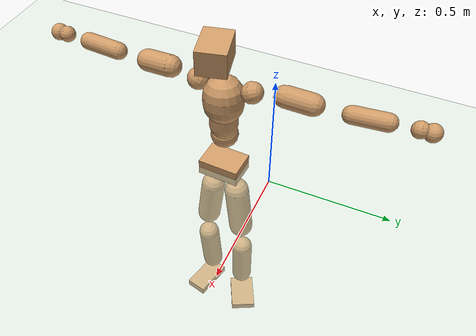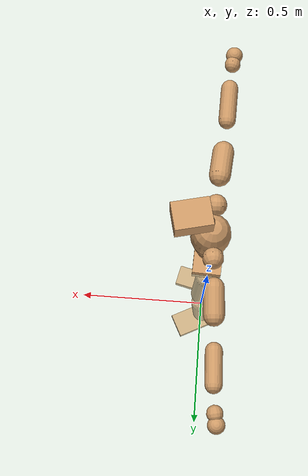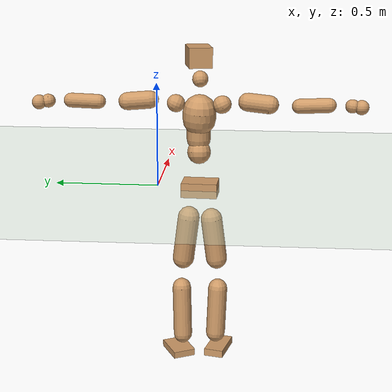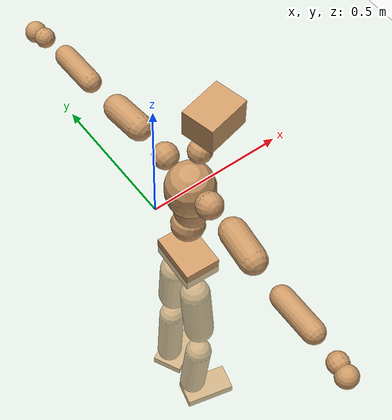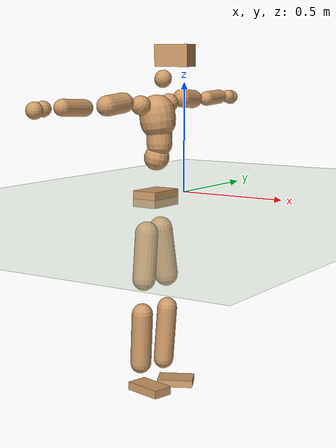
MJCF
<mujoco model="humanoid">
  <compiler coordinate="local" angle="radian"/>
  <default>
    <joint damping="0.0" armature="0.01" stiffness="0.0" limited="true"/>
    <geom conaffinity="1" condim="3" contype="7" margin="0.001" rgba="0.8 0.6 .4 1"/>
  </default>
  <asset>
    <texture type="skybox" builtin="gradient" rgb1=".4 .5 .6" rgb2="0 0 0" width="100" height="100"/>
    <texture builtin="flat" height="1278" mark="cross" markrgb="1 1 1" name="texgeom" random="0.01" rgb1="0.8 0.6 0.4" rgb2="0.8 0.6 0.4" type="cube" width="127"/>
    <texture builtin="checker" height="100" name="texplane" rgb1="0 0 0" rgb2="0.8 0.8 0.8" type="2d" width="100"/>
    <material name="MatPlane" reflectance="0.5" shininess="1" specular="1" texrepeat="60 60" texture="texplane"/>
    <material name="geom" texture="texgeom" texuniform="true"/>
  </asset>
  <worldbody>
    <light cutoff="100" diffuse="1 1 1" dir="-0 0 -1.3" directional="true" exponent="1" pos="0 0 1.3" specular=".1 .1 .1"/>
    <geom conaffinity="1" condim="3" name="floor" pos="0 0 0" rgba="0.8 0.9 0.8 1" size="100 100 .2" type="plane" material="MatPlane"/>
    <body name="Pelvis" pos="-0.006 -0.2084 0.0054">
      <freejoint name="Pelvis"/>
      <geom type="box" contype="1" conaffinity="1" density="5359.375115" pos="-0.0121 0.0006 -0.0082" size="0.0608 0.0857 0.0354" quat="0.9997 0.0000 0.0000 -0.0248" name="Pelvis"/>
      <body name="L_Hip" pos="-0.0261 0.0449 -0.0728">
        <joint name="L_Hip_x" type="hinge" pos="0 0 0" axis="1 0 0" stiffness="1600" damping="160" armature="0.02" range="-180.0000 180.0000"/>
        <joint name="L_Hip_y" type="hinge" pos="0 0 0" axis="0 1 0" stiffness="1600" damping="160" armature="0.02" range="-180.0000 180.0000"/>
        <joint name="L_Hip_z" type="hinge" pos="0 0 0" axis="0 0 1" stiffness="1600" damping="160" armature="0.02" range="-180.0000 180.0000"/>
        <geom type="capsule" contype="1" conaffinity="1" density="2040.816327" size="0.0526" fromto="0.0042 0.0106 -0.0818 0.0154 0.0388 -0.2990" name="L_Hip"/>
        <body name="L_Knee" pos="0.0197 0.0494 -0.3808">
          <joint name="L_Knee_x" type="hinge" pos="0 0 0" axis="1 0 0" stiffness="1600" damping="160" armature="0.02" range="-180.0000 180.0000"/>
          <joint name="L_Knee_y" type="hinge" pos="0 0 0" axis="0 1 0" stiffness="1600" damping="160" armature="0.02" range="-180.0000 180.0000"/>
          <joint name="L_Knee_z" type="hinge" pos="0 0 0" axis="0 0 1" stiffness="1600" damping="160" armature="0.02" range="-180.0000 180.0000"/>
          <geom type="capsule" contype="1" conaffinity="1" density="1234.567901" size="0.0457" fromto="-0.0050 -0.0019 -0.0756 -0.0214 -0.0079 -0.3212" name="L_Knee"/>
          <body name="L_Ankle" pos="-0.0264 -0.0098 -0.3967">
            <joint name="L_Ankle_x" type="hinge" pos="0 0 0" axis="1 0 0" stiffness="1600" damping="160" armature="0.02" range="-180.0000 180.0000"/>
            <joint name="L_Ankle_y" type="hinge" pos="0 0 0" axis="0 1 0" stiffness="1600" damping="160" armature="0.02" range="-180.0000 180.0000"/>
            <joint name="L_Ankle_z" type="hinge" pos="0 0 0" axis="0 0 1" stiffness="1600" damping="160" armature="0.02" range="-180.0000 180.0000"/>
            <geom type="box" contype="1" conaffinity="1" density="999.999981" pos="0.0553 0.0281 -0.0294" size="0.0811 0.0557 0.0165" quat="0.9726 0.0000 0.0000 0.2326" name="L_Ankle"/>
            <body name="L_Toe" pos="0.1106 0.0561 -0.0589">
              <joint name="L_Toe_x" type="hinge" pos="0 0 0" axis="1 0 0" stiffness="1000" damping="100" armature="0.02" range="-180.0000 180.0000"/>
              <joint name="L_Toe_y" type="hinge" pos="0 0 0" axis="0 1 0" stiffness="1000" damping="100" armature="0.02" range="-180.0000 180.0000"/>
              <joint name="L_Toe_z" type="hinge" pos="0 0 0" axis="0 0 1" stiffness="1000" damping="100" armature="0.02" range="-180.0000 180.0000"/>
              <geom type="box" contype="1" conaffinity="1" density="7031955.285387" pos="0.0000 0.0000 0.0321" size="0.0009 0.0026 0.001" quat="0.9718 0.0000 0.0000 0.2360" name="L_Toe"/>
            </body>
          </body>
        </body>
      </body>
      <body name="R_Hip" pos="-0.0233 -0.0453 -0.0802">
        <joint name="R_Hip_x" type="hinge" pos="0 0 0" axis="1 0 0" stiffness="1600" damping="160" armature="0.02" range="-180.0000 180.0000"/>
        <joint name="R_Hip_y" type="hinge" pos="0 0 0" axis="0 1 0" stiffness="1600" damping="160" armature="0.02" range="-180.0000 180.0000"/>
        <joint name="R_Hip_z" type="hinge" pos="0 0 0" axis="0 0 1" stiffness="1600" damping="160" armature="0.02" range="-180.0000 180.0000"/>
        <geom type="capsule" contype="1" conaffinity="1" density="2040.816327" size="0.0513" fromto="0.0008 -0.0101 -0.0807 0.0027 -0.0357 -0.2857" name="R_Hip"/>
        <body name="R_Knee" pos="0.0035 -0.0458 -0.3664">
          <joint name="R_Knee_x" type="hinge" pos="0 0 0" axis="1 0 0" stiffness="1600" damping="160" armature="0.02" range="-180.0000 180.0000"/>
          <joint name="R_Knee_y" type="hinge" pos="0 0 0" axis="0 1 0" stiffness="1600" damping="160" armature="0.02" range="-180.0000 180.0000"/>
          <joint name="R_Knee_z" type="hinge" pos="0 0 0" axis="0 0 1" stiffness="1600" damping="160" armature="0.02" range="-180.0000 180.0000"/>
          <geom type="capsule" contype="1" conaffinity="1" density="1234.567901" size="0.047" fromto="-0.0053 0.0029 -0.0768 -0.0214 0.0117 -0.3084" name="R_Knee"/>
          <body name="R_Ankle" pos="-0.0268 0.0146 -0.3852">
            <joint name="R_Ankle_x" type="hinge" pos="0 0 0" axis="1 0 0" stiffness="1600" damping="160" armature="0.02" range="-180.0000 180.0000"/>
            <joint name="R_Ankle_y" type="hinge" pos="0 0 0" axis="0 1 0" stiffness="1600" damping="160" armature="0.02" range="-180.0000 180.0000"/>
            <joint name="R_Ankle_z" type="hinge" pos="0 0 0" axis="0 0 1" stiffness="1600" damping="160" armature="0.02" range="-180.0000 180.0000"/>
            <geom type="box" contype="1" conaffinity="1" density="999.999986" pos="0.0615 -0.0148 -0.0283" size="0.0888 0.0472 0.0185" quat="0.9930 0.0000 0.0000 -0.1179" name="R_Ankle"/>
            <body name="R_Toe" pos="0.123 -0.0296 -0.0566">
              <joint name="R_Toe_x" type="hinge" pos="0 0 0" axis="1 0 0" stiffness="1000" damping="100" armature="0.02" range="-180.0000 180.0000"/>
              <joint name="R_Toe_y" type="hinge" pos="0 0 0" axis="0 1 0" stiffness="1000" damping="100" armature="0.02" range="-180.0000 180.0000"/>
              <joint name="R_Toe_z" type="hinge" pos="0 0 0" axis="0 0 1" stiffness="1000" damping="100" armature="0.02" range="-180.0000 180.0000"/>
              <geom type="box" contype="1" conaffinity="1" density="8808402.60064" pos="0.0000 0.0000 0.0323" size="0.0008 0.0023 0.0011" quat="0.9941 0.0000 0.0000 -0.1085" name="R_Toe"/>
            </body>
          </body>
        </body>
      </body>
      <body name="Torso" pos="-0.0229 0.004 0.1039">
        <joint name="Torso_x" type="hinge" pos="0 0 0" axis="1 0 0" stiffness="2000" damping="200" armature="0.02" range="-180.0000 180.0000"/>
        <joint name="Torso_y" type="hinge" pos="0 0 0" axis="0 1 0" stiffness="2000" damping="200" armature="0.02" range="-180.0000 180.0000"/>
        <joint name="Torso_z" type="hinge" pos="0 0 0" axis="0 0 1" stiffness="2000" damping="200" armature="0.02" range="-180.0000 180.0000"/>
        <geom type="capsule" contype="1" conaffinity="1" density="2040.816327" size="0.0562" fromto="0.0131 0.0023 0.0646 0.0135 0.0024 0.0665" name="Torso"/>
        <body name="Spine" pos="0.0266 0.0048 0.1311">
          <joint name="Spine_x" type="hinge" pos="0 0 0" axis="1 0 0" stiffness="2000" damping="200" armature="0.02" range="-180.0000 180.0000"/>
          <joint name="Spine_y" type="hinge" pos="0 0 0" axis="0 1 0" stiffness="2000" damping="200" armature="0.02" range="-180.0000 180.0000"/>
          <joint name="Spine_z" type="hinge" pos="0 0 0" axis="0 0 1" stiffness="2000" damping="200" armature="0.02" range="-180.0000 180.0000"/>
          <geom type="capsule" contype="1" conaffinity="1" density="2040.816327" size="0.057" fromto="-0.0018 -0.0001 0.0570 0.0001 0.0000 -0.0045" name="Spine"/>
          <body name="Chest" pos="-0.0017 -0.0001 0.0525">
            <joint name="Chest_x" type="hinge" pos="0 0 0" axis="1 0 0" stiffness="2000" damping="200" armature="0.02" range="-180.0000 180.0000"/>
            <joint name="Chest_y" type="hinge" pos="0 0 0" axis="0 1 0" stiffness="2000" damping="200" armature="0.02" range="-180.0000 180.0000"/>
            <joint name="Chest_z" type="hinge" pos="0 0 0" axis="0 0 1" stiffness="2000" damping="200" armature="0.02" range="-180.0000 180.0000"/>
            <geom type="capsule" contype="1" conaffinity="1" density="2040.816327" size="0.0796" fromto="-0.0076 -0.0045 0.0791 -0.0041 -0.0024 0.0428" name="Chest"/>
            <body name="Neck" pos="-0.0022 -0.0108 0.1773">
              <joint name="Neck_x" type="hinge" pos="0 0 0" axis="1 0 0" stiffness="1000" damping="100" armature="0.02" range="-180.0000 180.0000"/>
              <joint name="Neck_y" type="hinge" pos="0 0 0" axis="0 1 0" stiffness="1000" damping="100" armature="0.02" range="-180.0000 180.0000"/>
              <joint name="Neck_z" type="hinge" pos="0 0 0" axis="0 0 1" stiffness="1000" damping="100" armature="0.02" range="-180.0000 180.0000"/>
              <geom type="capsule" contype="1" conaffinity="1" density="1000" size="0.0379" fromto="0.0263 0.0054 0.0483 0.0273 0.0056 0.0501" name="Neck"/>
              <body name="Head" pos="0.0536 0.0109 0.0984">
                <joint name="Head_x" type="hinge" pos="0 0 0" axis="1 0 0" stiffness="1000" damping="100" armature="0.02" range="-180.0000 180.0000"/>
                <joint name="Head_y" type="hinge" pos="0 0 0" axis="0 1 0" stiffness="1000" damping="100" armature="0.02" range="-180.0000 180.0000"/>
                <joint name="Head_z" type="hinge" pos="0 0 0" axis="0 0 1" stiffness="1000" damping="100" armature="0.02" range="-180.0000 180.0000"/>
                <geom type="box" contype="1" conaffinity="1" density="2249.999812" pos="0.0278 0.0065 0.0502" size="0.0744 0.0554 0.0479" quat="0.9935 0.0000 0.0000 0.1140" name="Head"/>
              </body>
            </body>
            <body name="L_Thorax" pos="-0.0142 0.056 0.0956">
              <joint name="L_Thorax_x" type="hinge" pos="0 0 0" axis="1 0 0" stiffness="1000" damping="100" armature="0.02" range="-180.0000 180.0000"/>
              <joint name="L_Thorax_y" type="hinge" pos="0 0 0" axis="0 1 0" stiffness="1000" damping="100" armature="0.02" range="-180.0000 180.0000"/>
              <joint name="L_Thorax_z" type="hinge" pos="0 0 0" axis="0 0 1" stiffness="1000" damping="100" armature="0.02" range="-180.0000 180.0000"/>
              <geom type="capsule" contype="1" conaffinity="1" density="1000" size="0.0421" fromto="-0.0039 0.0490 0.0219 -0.0041 0.0508 0.0227" name="L_Thorax"/>
              <body name="L_Shoulder" pos="-0.008 0.0998 0.0446">
                <joint name="L_Shoulder_x" type="hinge" pos="0 0 0" axis="1 0 0" stiffness="1000" damping="100" armature="0.02" range="-720.0000 720.0000"/>
                <joint name="L_Shoulder_y" type="hinge" pos="0 0 0" axis="0 1 0" stiffness="1000" damping="100" armature="0.02" range="-720.0000 720.0000"/>
                <joint name="L_Shoulder_z" type="hinge" pos="0 0 0" axis="0 0 1" stiffness="1000" damping="100" armature="0.02" range="-720.0000 720.0000"/>
                <geom type="capsule" contype="1" conaffinity="1" density="1000" size="0.0422" fromto="-0.0046 0.0719 -0.0052 -0.0114 0.1778 -0.0129" name="L_Shoulder"/>
                <body name="L_Elbow" pos="-0.016 0.2497 -0.0181">
                  <joint name="L_Elbow_x" type="hinge" pos="0 0 0" axis="1 0 0" stiffness="1000" damping="100" armature="0.02" range="-720.0000 720.0000"/>
                  <joint name="L_Elbow_y" type="hinge" pos="0 0 0" axis="0 1 0" stiffness="1000" damping="100" armature="0.02" range="-720.0000 720.0000"/>
                  <joint name="L_Elbow_z" type="hinge" pos="0 0 0" axis="0 0 1" stiffness="1000" damping="100" armature="0.02" range="-720.0000 720.0000"/>
                  <geom type="capsule" contype="1" conaffinity="1" density="1000" size="0.0342" fromto="-0.0028 0.0641 0.0028 -0.0084 0.1935 0.0086" name="L_Elbow"/>
                  <body name="L_Wrist" pos="-0.0112 0.2576 0.0114">
                    <joint name="L_Wrist_x" type="hinge" pos="0 0 0" axis="1 0 0" stiffness="600" damping="60" armature="0.02" range="-180.0000 180.0000"/>
                    <joint name="L_Wrist_y" type="hinge" pos="0 0 0" axis="0 1 0" stiffness="600" damping="60" armature="0.02" range="-180.0000 180.0000"/>
                    <joint name="L_Wrist_z" type="hinge" pos="0 0 0" axis="0 0 1" stiffness="600" damping="60" armature="0.02" range="-180.0000 180.0000"/>
                    <geom type="capsule" contype="1" conaffinity="1" density="1000" size="0.0321" fromto="-0.0077 0.0413 -0.0051 -0.0081 0.0432 -0.0053" name="L_Wrist"/>
                    <body name="L_Hand" pos="-0.0158 0.0845 -0.0104">
                      <joint name="L_Hand_x" type="hinge" pos="0 0 0" axis="1 0 0" stiffness="600" damping="60" armature="0.02" range="-180.0000 180.0000"/>
                      <joint name="L_Hand_y" type="hinge" pos="0 0 0" axis="0 1 0" stiffness="600" damping="60" armature="0.02" range="-180.0000 180.0000"/>
                      <joint name="L_Hand_z" type="hinge" pos="0 0 0" axis="0 0 1" stiffness="600" damping="60" armature="0.02" range="-180.0000 180.0000"/>
                      <geom type="sphere" contype="1" conaffinity="1" density="1000" size="0.0343" pos="0.0000 0.0000 0.0000" name="L_Hand"/>
                    </body>
                  </body>
                </body>
              </body>
            </body>
            <body name="R_Thorax" pos="-0.0185 -0.0658 0.0929">
              <joint name="R_Thorax_x" type="hinge" pos="0 0 0" axis="1 0 0" stiffness="1000" damping="100" armature="0.02" range="-180.0000 180.0000"/>
              <joint name="R_Thorax_y" type="hinge" pos="0 0 0" axis="0 1 0" stiffness="1000" damping="100" armature="0.02" range="-180.0000 180.0000"/>
              <joint name="R_Thorax_z" type="hinge" pos="0 0 0" axis="0 0 1" stiffness="1000" damping="100" armature="0.02" range="-180.0000 180.0000"/>
              <geom type="capsule" contype="1" conaffinity="1" density="1000" size="0.0428" fromto="-0.0003 -0.0451 0.0212 -0.0003 -0.0469 0.0220" name="R_Thorax"/>
              <body name="R_Shoulder" pos="-0.0006 -0.0919 0.0432">
                <joint name="R_Shoulder_x" type="hinge" pos="0 0 0" axis="1 0 0" stiffness="1000" damping="100" armature="0.02" range="-720.0000 720.0000"/>
                <joint name="R_Shoulder_y" type="hinge" pos="0 0 0" axis="0 1 0" stiffness="1000" damping="100" armature="0.02" range="-720.0000 720.0000"/>
                <joint name="R_Shoulder_z" type="hinge" pos="0 0 0" axis="0 0 1" stiffness="1000" damping="100" armature="0.02" range="-720.0000 720.0000"/>
                <geom type="capsule" contype="1" conaffinity="1" density="1000" size="0.0434" fromto="-0.0064 -0.0728 -0.0064 -0.0155 -0.1759 -0.0156" name="R_Shoulder"/>
                <body name="R_Elbow" pos="-0.0219 -0.2487 -0.022">
                  <joint name="R_Elbow_x" type="hinge" pos="0 0 0" axis="1 0 0" stiffness="1000" damping="100" armature="0.02" range="-720.0000 720.0000"/>
                  <joint name="R_Elbow_y" type="hinge" pos="0 0 0" axis="0 1 0" stiffness="1000" damping="100" armature="0.02" range="-720.0000 720.0000"/>
                  <joint name="R_Elbow_z" type="hinge" pos="0 0 0" axis="0 0 1" stiffness="1000" damping="100" armature="0.02" range="-720.0000 720.0000"/>
                  <geom type="capsule" contype="1" conaffinity="1" density="1000" size="0.0345" fromto="-0.0014 -0.0644 0.0031 -0.0043 -0.2007 0.0098" name="R_Elbow"/>
                  <body name="R_Wrist" pos="-0.0056 -0.2651 0.0129">
                    <joint name="R_Wrist_x" type="hinge" pos="0 0 0" axis="1 0 0" stiffness="600" damping="60" armature="0.02" range="-180.0000 180.0000"/>
                    <joint name="R_Wrist_y" type="hinge" pos="0 0 0" axis="0 1 0" stiffness="600" damping="60" armature="0.02" range="-180.0000 180.0000"/>
                    <joint name="R_Wrist_z" type="hinge" pos="0 0 0" axis="0 0 1" stiffness="600" damping="60" armature="0.02" range="-180.0000 180.0000"/>
                    <geom type="capsule" contype="1" conaffinity="1" density="1000" size="0.032" fromto="-0.0052 -0.0413 -0.0040 -0.0055 -0.0433 -0.0042" name="R_Wrist"/>
                    <body name="R_Hand" pos="-0.0107 -0.0846 -0.0082">
                      <joint name="R_Hand_x" type="hinge" pos="0 0 0" axis="1 0 0" stiffness="600" damping="60" armature="0.02" range="-180.0000 180.0000"/>
                      <joint name="R_Hand_y" type="hinge" pos="0 0 0" axis="0 1 0" stiffness="600" damping="60" armature="0.02" range="-180.0000 180.0000"/>
                      <joint name="R_Hand_z" type="hinge" pos="0 0 0" axis="0 0 1" stiffness="600" damping="60" armature="0.02" range="-180.0000 180.0000"/>
                      <geom type="sphere" contype="1" conaffinity="1" density="1000" size="0.0341" pos="0.0000 0.0000 0.0000" name="R_Hand"/>
                    </body>
                  </body>
                </body>
              </body>
            </body>
          </body>
        </body>
      </body>
    </body>
  </worldbody>
  <actuator>
    <motor name="L_Hip_x" joint="L_Hip_x" gear="500"/>
    <motor name="L_Hip_y" joint="L_Hip_y" gear="500"/>
    <motor name="L_Hip_z" joint="L_Hip_z" gear="500"/>
    <motor name="L_Knee_x" joint="L_Knee_x" gear="500"/>
    <motor name="L_Knee_y" joint="L_Knee_y" gear="500"/>
    <motor name="L_Knee_z" joint="L_Knee_z" gear="500"/>
    <motor name="L_Ankle_x" joint="L_Ankle_x" gear="500"/>
    <motor name="L_Ankle_y" joint="L_Ankle_y" gear="500"/>
    <motor name="L_Ankle_z" joint="L_Ankle_z" gear="500"/>
    <motor name="L_Toe_x" joint="L_Toe_x" gear="500"/>
    <motor name="L_Toe_y" joint="L_Toe_y" gear="500"/>
    <motor name="L_Toe_z" joint="L_Toe_z" gear="500"/>
    <motor name="R_Hip_x" joint="R_Hip_x" gear="500"/>
    <motor name="R_Hip_y" joint="R_Hip_y" gear="500"/>
    <motor name="R_Hip_z" joint="R_Hip_z" gear="500"/>
    <motor name="R_Knee_x" joint="R_Knee_x" gear="500"/>
    <motor name="R_Knee_y" joint="R_Knee_y" gear="500"/>
    <motor name="R_Knee_z" joint="R_Knee_z" gear="500"/>
    <motor name="R_Ankle_x" joint="R_Ankle_x" gear="500"/>
    <motor name="R_Ankle_y" joint="R_Ankle_y" gear="500"/>
    <motor name="R_Ankle_z" joint="R_Ankle_z" gear="500"/>
    <motor name="R_Toe_x" joint="R_Toe_x" gear="500"/>
    <motor name="R_Toe_y" joint="R_Toe_y" gear="500"/>
    <motor name="R_Toe_z" joint="R_Toe_z" gear="500"/>
    <motor name="Torso_x" joint="Torso_x" gear="500"/>
    <motor name="Torso_y" joint="Torso_y" gear="500"/>
    <motor name="Torso_z" joint="Torso_z" gear="500"/>
    <motor name="Spine_x" joint="Spine_x" gear="500"/>
    <motor name="Spine_y" joint="Spine_y" gear="500"/>
    <motor name="Spine_z" joint="Spine_z" gear="500"/>
    <motor name="Chest_x" joint="Chest_x" gear="500"/>
    <motor name="Chest_y" joint="Chest_y" gear="500"/>
    <motor name="Chest_z" joint="Chest_z" gear="500"/>
    <motor name="Neck_x" joint="Neck_x" gear="500"/>
    <motor name="Neck_y" joint="Neck_y" gear="500"/>
    <motor name="Neck_z" joint="Neck_z" gear="500"/>
    <motor name="Head_x" joint="Head_x" gear="500"/>
    <motor name="Head_y" joint="Head_y" gear="500"/>
    <motor name="Head_z" joint="Head_z" gear="500"/>
    <motor name="L_Thorax_x" joint="L_Thorax_x" gear="500"/>
    <motor name="L_Thorax_y" joint="L_Thorax_y" gear="500"/>
    <motor name="L_Thorax_z" joint="L_Thorax_z" gear="500"/>
    <motor name="L_Shoulder_x" joint="L_Shoulder_x" gear="500"/>
    <motor name="L_Shoulder_y" joint="L_Shoulder_y" gear="500"/>
    <motor name="L_Shoulder_z" joint="L_Shoulder_z" gear="500"/>
    <motor name="L_Elbow_x" joint="L_Elbow_x" gear="500"/>
    <motor name="L_Elbow_y" joint="L_Elbow_y" gear="500"/>
    <motor name="L_Elbow_z" joint="L_Elbow_z" gear="500"/>
    <motor name="L_Wrist_x" joint="L_Wrist_x" gear="500"/>
    <motor name="L_Wrist_y" joint="L_Wrist_y" gear="500"/>
    <motor name="L_Wrist_z" joint="L_Wrist_z" gear="500"/>
    <motor name="L_Hand_x" joint="L_Hand_x" gear="500"/>
    <motor name="L_Hand_y" joint="L_Hand_y" gear="500"/>
    <motor name="L_Hand_z" joint="L_Hand_z" gear="500"/>
    <motor name="R_Thorax_x" joint="R_Thorax_x" gear="500"/>
    <motor name="R_Thorax_y" joint="R_Thorax_y" gear="500"/>
    <motor name="R_Thorax_z" joint="R_Thorax_z" gear="500"/>
    <motor name="R_Shoulder_x" joint="R_Shoulder_x" gear="500"/>
    <motor name="R_Shoulder_y" joint="R_Shoulder_y" gear="500"/>
    <motor name="R_Shoulder_z" joint="R_Shoulder_z" gear="500"/>
    <motor name="R_Elbow_x" joint="R_Elbow_x" gear="500"/>
    <motor name="R_Elbow_y" joint="R_Elbow_y" gear="500"/>
    <motor name="R_Elbow_z" joint="R_Elbow_z" gear="500"/>
    <motor name="R_Wrist_x" joint="R_Wrist_x" gear="500"/>
    <motor name="R_Wrist_y" joint="R_Wrist_y" gear="500"/>
    <motor name="R_Wrist_z" joint="R_Wrist_z" gear="500"/>
    <motor name="R_Hand_x" joint="R_Hand_x" gear="500"/>
    <motor name="R_Hand_y" joint="R_Hand_y" gear="500"/>
    <motor name="R_Hand_z" joint="R_Hand_z" gear="500"/>
  </actuator>
  <contact>
    <exclude body1="Torso" body2="Chest"/>
    <exclude body1="Head" body2="Chest"/>
    <exclude body1="R_Knee" body2="R_Toe"/>
    <exclude body1="R_Knee" body2="L_Ankle"/>
    <exclude body1="R_Knee" body2="L_Toe"/>
    <exclude body1="L_Knee" body2="L_Toe"/>
    <exclude body1="L_Knee" body2="R_Ankle"/>
    <exclude body1="L_Knee" body2="R_Toe"/>
    <exclude body1="L_Shoulder" body2="Chest"/>
    <exclude body1="R_Shoulder" body2="Chest"/>
  </contact>
  <sensor/>
  <size njmax="700" nconmax="700"/>
</mujoco>
